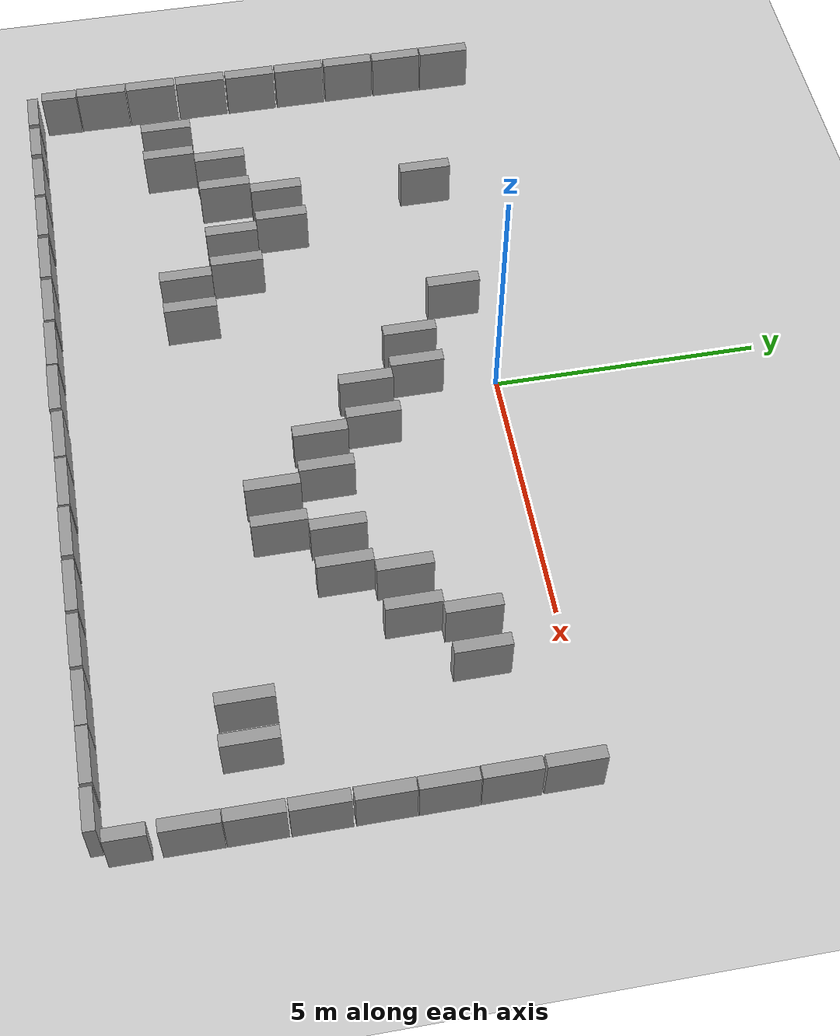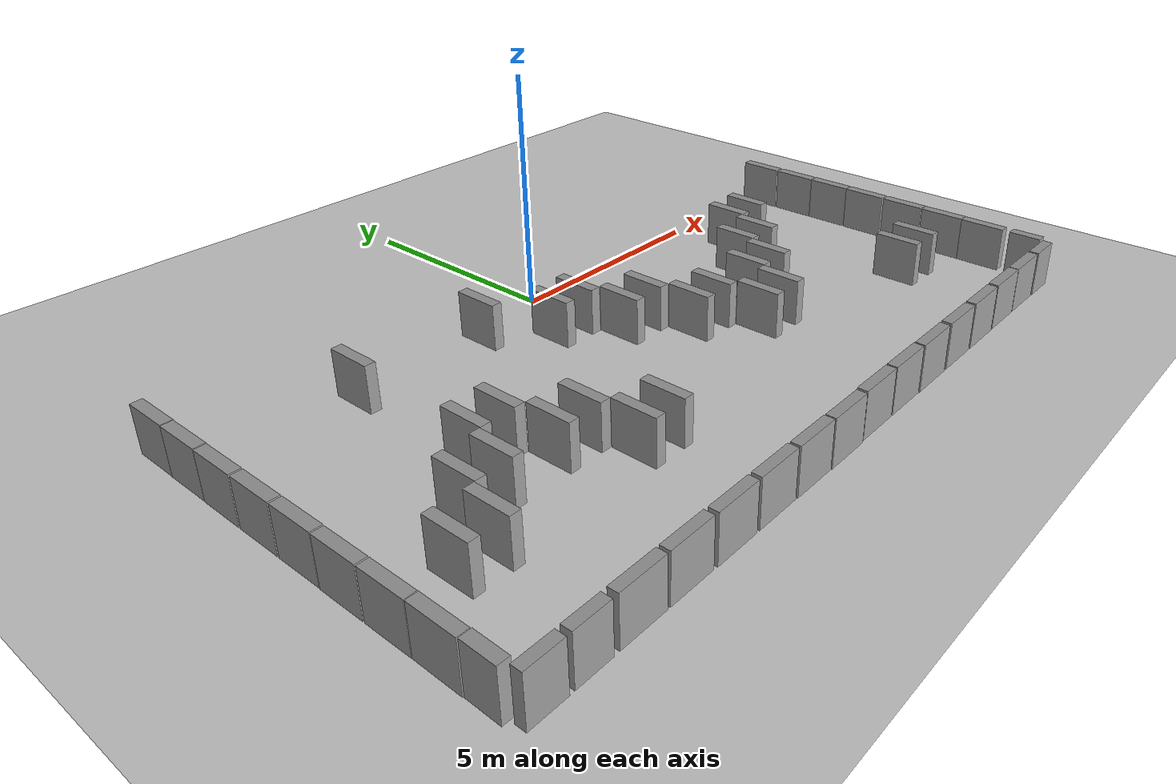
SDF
<sdf version="1.6">
 <world name="default">
  <model name="ground_plane">
   <static>1</static>
   <static>1</static>
   <link name="link">
    <collision name="collision">
     <geometry><plane><normal>0 0 1</normal><size>100 100</size></plane></geometry>
     <surface><friction><ode><mu>100</mu><mu2>50</mu2></ode></friction></surface>
    </collision>
    <visual name="visual">
     <cast_shadows>0</cast_shadows>
     <geometry><plane><normal>0 0 1</normal><size>100 100</size></plane></geometry>
     <material>
      <script><uri>file://media/materials/scripts/gazebo.material</uri><name>Gazebo/Grey</name></script>
     </material>
    </visual>
   </link>
  </model>
  <model name="unit_box_0_clone_7">
   <pose>8.11276 -0.44932 0.5 0 -0 0.000299</pose>
   <link name="link">
    <inertial>
     <mass>1</mass>
     <inertia>
      <ixx>0.166667</ixx>
      <ixy>0</ixy>
      <ixz>0</ixz>
      <iyy>0.166667</iyy>
      <iyz>0</iyz>
      <izz>0.166667</izz>
     </inertia>
    </inertial>
    <collision name="collision"><geometry><box><size>0.230819 1 1</size></box></geometry></collision>
    <visual name="visual">
     <geometry><box><size>0.230819 1 1</size></box></geometry>
     <material>
      <script><name>Gazebo/Grey</name><uri>file://media/materials/scripts/gazebo.material</uri></script>
     </material>
    </visual>
   </link>
  </model>
  <model name="unit_box_0_clone_8">
   <pose>8.11912 -1.48629 0.5 0 -0 0.000299</pose>
   <link name="link">
    <inertial>
     <mass>1</mass>
     <inertia>
      <ixx>0.166667</ixx>
      <ixy>0</ixy>
      <ixz>0</ixz>
      <iyy>0.166667</iyy>
      <iyz>0</iyz>
      <izz>0.166667</izz>
     </inertia>
    </inertial>
    <collision name="collision"><geometry><box><size>0.230819 1 1</size></box></geometry></collision>
    <visual name="visual">
     <geometry><box><size>0.230819 1 1</size></box></geometry>
     <material>
      <script><name>Gazebo/Grey</name><uri>file://media/materials/scripts/gazebo.material</uri></script>
     </material>
    </visual>
   </link>
  </model>
  <model name="unit_box_0_clone_9">
   <pose>8.12548 -2.5042 0.5 0 -0 0.000299</pose>
   <link name="link">
    <inertial>
     <mass>1</mass>
     <inertia>
      <ixx>0.166667</ixx>
      <ixy>0</ixy>
      <ixz>0</ixz>
      <iyy>0.166667</iyy>
      <iyz>0</iyz>
      <izz>0.166667</izz>
     </inertia>
    </inertial>
    <collision name="collision"><geometry><box><size>0.230819 1 1</size></box></geometry></collision>
    <visual name="visual">
     <geometry><box><size>0.230819 1 1</size></box></geometry>
     <material>
      <script><name>Gazebo/Grey</name><uri>file://media/materials/scripts/gazebo.material</uri></script>
     </material>
    </visual>
   </link>
  </model>
  <model name="unit_box_0_clone_10">
   <pose>8.12331 -3.52223 0.5 0 -0 0.000299</pose>
   <link name="link">
    <inertial>
     <mass>1</mass>
     <inertia>
      <ixx>0.166667</ixx>
      <ixy>0</ixy>
      <ixz>0</ixz>
      <iyy>0.166667</iyy>
      <iyz>0</iyz>
      <izz>0.166667</izz>
     </inertia>
    </inertial>
    <collision name="collision"><geometry><box><size>0.230819 1 1</size></box></geometry></collision>
    <visual name="visual">
     <geometry><box><size>0.230819 1 1</size></box></geometry>
     <material>
      <script><name>Gazebo/Grey</name><uri>file://media/materials/scripts/gazebo.material</uri></script>
     </material>
    </visual>
   </link>
  </model>
  <model name="unit_box_0_clone_11">
   <pose>8.1233 -4.56316 0.5 0 -0 0.000299</pose>
   <link name="link">
    <inertial>
     <mass>1</mass>
     <inertia>
      <ixx>0.166667</ixx>
      <ixy>0</ixy>
      <ixz>0</ixz>
      <iyy>0.166667</iyy>
      <iyz>0</iyz>
      <izz>0.166667</izz>
     </inertia>
    </inertial>
    <collision name="collision"><geometry><box><size>0.230819 1 1</size></box></geometry></collision>
    <visual name="visual">
     <geometry><box><size>0.230819 1 1</size></box></geometry>
     <material>
      <script><name>Gazebo/Grey</name><uri>file://media/materials/scripts/gazebo.material</uri></script>
     </material>
    </visual>
   </link>
  </model>
  <model name="unit_box_0_clone_12">
   <pose>8.11815 -5.59377 0.5 0 -0 0.000299</pose>
   <link name="link">
    <inertial>
     <mass>1</mass>
     <inertia>
      <ixx>0.166667</ixx>
      <ixy>0</ixy>
      <ixz>0</ixz>
      <iyy>0.166667</iyy>
      <iyz>0</iyz>
      <izz>0.166667</izz>
     </inertia>
    </inertial>
    <collision name="collision"><geometry><box><size>0.230819 1 1</size></box></geometry></collision>
    <visual name="visual">
     <geometry><box><size>0.230819 1 1</size></box></geometry>
     <material>
      <script><name>Gazebo/Grey</name><uri>file://media/materials/scripts/gazebo.material</uri></script>
     </material>
    </visual>
   </link>
  </model>
  <model name="unit_box_0_clone_13">
   <pose>8.11333 -6.60776 0.5 -0 -0 -0.005308</pose>
   <link name="link">
    <inertial>
     <mass>1</mass>
     <inertia>
      <ixx>0.166667</ixx>
      <ixy>0</ixy>
      <ixz>0</ixz>
      <iyy>0.166667</iyy>
      <iyz>0</iyz>
      <izz>0.166667</izz>
     </inertia>
    </inertial>
    <collision name="collision"><geometry><box><size>0.230819 1 1</size></box></geometry></collision>
    <visual name="visual">
     <geometry><box><size>0.230819 1 1</size></box></geometry>
     <material>
      <script><name>Gazebo/Grey</name><uri>file://media/materials/scripts/gazebo.material</uri></script>
     </material>
    </visual>
   </link>
  </model>
  <model name="unit_box_clone_15_clone_0">
   <pose>6.71207 -8.13115 0.5 0 -0 0.00017</pose>
   <link name="link">
    <inertial>
     <mass>1</mass>
     <inertia>
      <ixx>0.166667</ixx>
      <ixy>0</ixy>
      <ixz>0</ixz>
      <iyy>0.166667</iyy>
      <iyz>0</iyz>
      <izz>0.166667</izz>
     </inertia>
    </inertial>
    <collision name="collision"><geometry><box><size>1 0.210541 1</size></box></geometry></collision>
    <visual name="visual">
     <geometry><box><size>1 0.210541 1</size></box></geometry>
     <material>
      <script><name>Gazebo/Grey</name><uri>file://media/materials/scripts/gazebo.material</uri></script>
     </material>
    </visual>
   </link>
  </model>
  <model name="unit_box_clone_15_clone_1">
   <pose>5.69715 -8.13115 0.5 0 -0 0.00017</pose>
   <link name="link">
    <inertial>
     <mass>1</mass>
     <inertia>
      <ixx>0.166667</ixx>
      <ixy>0</ixy>
      <ixz>0</ixz>
      <iyy>0.166667</iyy>
      <iyz>0</iyz>
      <izz>0.166667</izz>
     </inertia>
    </inertial>
    <collision name="collision"><geometry><box><size>1 0.210541 1</size></box></geometry></collision>
    <visual name="visual">
     <geometry><box><size>1 0.210541 1</size></box></geometry>
     <material>
      <script><name>Gazebo/Grey</name><uri>file://media/materials/scripts/gazebo.material</uri></script>
     </material>
    </visual>
   </link>
  </model>
  <model name="unit_box_clone_15_clone_2">
   <pose>4.63881 -8.13733 0.5 0 -0 0.00017</pose>
   <link name="link">
    <inertial>
     <mass>1</mass>
     <inertia>
      <ixx>0.166667</ixx>
      <ixy>0</ixy>
      <ixz>0</ixz>
      <iyy>0.166667</iyy>
      <iyz>0</iyz>
      <izz>0.166667</izz>
     </inertia>
    </inertial>
    <collision name="collision"><geometry><box><size>1 0.210541 1</size></box></geometry></collision>
    <visual name="visual">
     <geometry><box><size>1 0.210541 1</size></box></geometry>
     <material>
      <script><name>Gazebo/Grey</name><uri>file://media/materials/scripts/gazebo.material</uri></script>
     </material>
    </visual>
   </link>
  </model>
  <model name="unit_box_clone_15_clone_3">
   <pose>3.57975 -8.13733 0.5 0 -0 0.00017</pose>
   <link name="link">
    <inertial>
     <mass>1</mass>
     <inertia>
      <ixx>0.166667</ixx>
      <ixy>0</ixy>
      <ixz>0</ixz>
      <iyy>0.166667</iyy>
      <iyz>0</iyz>
      <izz>0.166667</izz>
     </inertia>
    </inertial>
    <collision name="collision"><geometry><box><size>1 0.210541 1</size></box></geometry></collision>
    <visual name="visual">
     <geometry><box><size>1 0.210541 1</size></box></geometry>
     <material>
      <script><name>Gazebo/Grey</name><uri>file://media/materials/scripts/gazebo.material</uri></script>
     </material>
    </visual>
   </link>
  </model>
  <model name="unit_box_clone_15_clone_4">
   <pose>2.49815 -8.13731 0.5 0 -0 0.00017</pose>
   <link name="link">
    <inertial>
     <mass>1</mass>
     <inertia>
      <ixx>0.166667</ixx>
      <ixy>0</ixy>
      <ixz>0</ixz>
      <iyy>0.166667</iyy>
      <iyz>0</iyz>
      <izz>0.166667</izz>
     </inertia>
    </inertial>
    <collision name="collision"><geometry><box><size>1 0.210541 1</size></box></geometry></collision>
    <visual name="visual">
     <geometry><box><size>1 0.210541 1</size></box></geometry>
     <material>
      <script><name>Gazebo/Grey</name><uri>file://media/materials/scripts/gazebo.material</uri></script>
     </material>
    </visual>
   </link>
  </model>
  <model name="unit_box_clone_15_clone_5">
   <pose>1.46162 -8.12604 0.5 0 -0 0.00017</pose>
   <link name="link">
    <inertial>
     <mass>1</mass>
     <inertia>
      <ixx>0.166667</ixx>
      <ixy>0</ixy>
      <ixz>0</ixz>
      <iyy>0.166667</iyy>
      <iyz>0</iyz>
      <izz>0.166667</izz>
     </inertia>
    </inertial>
    <collision name="collision"><geometry><box><size>1 0.210541 1</size></box></geometry></collision>
    <visual name="visual">
     <geometry><box><size>1 0.210541 1</size></box></geometry>
     <material>
      <script><name>Gazebo/Grey</name><uri>file://media/materials/scripts/gazebo.material</uri></script>
     </material>
    </visual>
   </link>
  </model>
  <model name="unit_box_clone_15_clone_6">
   <pose>0.425089 -8.12603 0.5 0 -0 0.00017</pose>
   <link name="link">
    <inertial>
     <mass>1</mass>
     <inertia>
      <ixx>0.166667</ixx>
      <ixy>0</ixy>
      <ixz>0</ixz>
      <iyy>0.166667</iyy>
      <iyz>0</iyz>
      <izz>0.166667</izz>
     </inertia>
    </inertial>
    <collision name="collision"><geometry><box><size>1 0.210541 1</size></box></geometry></collision>
    <visual name="visual">
     <geometry><box><size>1 0.210541 1</size></box></geometry>
     <material>
      <script><name>Gazebo/Grey</name><uri>file://media/materials/scripts/gazebo.material</uri></script>
     </material>
    </visual>
   </link>
  </model>
  <model name="unit_box_clone_15_clone_7">
   <pose>-0.633973 -8.14859 0.5 0 -0 0.00017</pose>
   <link name="link">
    <inertial>
     <mass>1</mass>
     <inertia>
      <ixx>0.166667</ixx>
      <ixy>0</ixy>
      <ixz>0</ixz>
      <iyy>0.166667</iyy>
      <iyz>0</iyz>
      <izz>0.166667</izz>
     </inertia>
    </inertial>
    <collision name="collision"><geometry><box><size>1 0.210541 1</size></box></geometry></collision>
    <visual name="visual">
     <geometry><box><size>1 0.210541 1</size></box></geometry>
     <material>
      <script><name>Gazebo/Grey</name><uri>file://media/materials/scripts/gazebo.material</uri></script>
     </material>
    </visual>
   </link>
  </model>
  <model name="unit_box_clone_15_clone_8">
   <pose>-1.65923 -8.1373 0.5 0 -0 0.00017</pose>
   <link name="link">
    <inertial>
     <mass>1</mass>
     <inertia>
      <ixx>0.166667</ixx>
      <ixy>0</ixy>
      <ixz>0</ixz>
      <iyy>0.166667</iyy>
      <iyz>0</iyz>
      <izz>0.166667</izz>
     </inertia>
    </inertial>
    <collision name="collision"><geometry><box><size>1 0.210541 1</size></box></geometry></collision>
    <visual name="visual">
     <geometry><box><size>1 0.210541 1</size></box></geometry>
     <material>
      <script><name>Gazebo/Grey</name><uri>file://media/materials/scripts/gazebo.material</uri></script>
     </material>
    </visual>
   </link>
  </model>
  <model name="unit_box_clone_15_clone_9">
   <pose>-2.70703 -8.12605 0.5 0 -0 0.00017</pose>
   <link name="link">
    <inertial>
     <mass>1</mass>
     <inertia>
      <ixx>0.166667</ixx>
      <ixy>0</ixy>
      <ixz>0</ixz>
      <iyy>0.166667</iyy>
      <iyz>0</iyz>
      <izz>0.166667</izz>
     </inertia>
    </inertial>
    <collision name="collision"><geometry><box><size>1 0.210541 1</size></box></geometry></collision>
    <visual name="visual">
     <geometry><box><size>1 0.210541 1</size></box></geometry>
     <material>
      <script><name>Gazebo/Grey</name><uri>file://media/materials/scripts/gazebo.material</uri></script>
     </material>
    </visual>
   </link>
  </model>
  <model name="unit_box_clone_15_clone_10">
   <pose>-3.77736 -8.12604 0.5 0 -0 0.00017</pose>
   <link name="link">
    <inertial>
     <mass>1</mass>
     <inertia>
      <ixx>0.166667</ixx>
      <ixy>0</ixy>
      <ixz>0</ixz>
      <iyy>0.166667</iyy>
      <iyz>0</iyz>
      <izz>0.166667</izz>
     </inertia>
    </inertial>
    <collision name="collision"><geometry><box><size>1 0.210541 1</size></box></geometry></collision>
    <visual name="visual">
     <geometry><box><size>1 0.210541 1</size></box></geometry>
     <material>
      <script><name>Gazebo/Grey</name><uri>file://media/materials/scripts/gazebo.material</uri></script>
     </material>
    </visual>
   </link>
  </model>
  <model name="unit_box_clone_15_clone_11">
   <pose>-4.85896 -8.11478 0.5 0 -0 0.00017</pose>
   <link name="link">
    <inertial>
     <mass>1</mass>
     <inertia>
      <ixx>0.166667</ixx>
      <ixy>0</ixy>
      <ixz>0</ixz>
      <iyy>0.166667</iyy>
      <iyz>0</iyz>
      <izz>0.166667</izz>
     </inertia>
    </inertial>
    <collision name="collision"><geometry><box><size>1 0.210541 1</size></box></geometry></collision>
    <visual name="visual">
     <geometry><box><size>1 0.210541 1</size></box></geometry>
     <material>
      <script><name>Gazebo/Grey</name><uri>file://media/materials/scripts/gazebo.material</uri></script>
     </material>
    </visual>
   </link>
  </model>
  <model name="unit_box_clone_15_clone_12">
   <pose>-5.91802 -8.11477 0.5 0 -0 0.00017</pose>
   <link name="link">
    <inertial>
     <mass>1</mass>
     <inertia>
      <ixx>0.166667</ixx>
      <ixy>0</ixy>
      <ixz>0</ixz>
      <iyy>0.166667</iyy>
      <iyz>0</iyz>
      <izz>0.166667</izz>
     </inertia>
    </inertial>
    <collision name="collision"><geometry><box><size>1 0.210541 1</size></box></geometry></collision>
    <visual name="visual">
     <geometry><box><size>1 0.210541 1</size></box></geometry>
     <material>
      <script><name>Gazebo/Grey</name><uri>file://media/materials/scripts/gazebo.material</uri></script>
     </material>
    </visual>
   </link>
  </model>
  <model name="unit_box_0_clone_4_clone_6">
   <pose>-8.11933 0.50163 0.5 0 -0 0.000299</pose>
   <link name="link">
    <inertial>
     <mass>1</mass>
     <inertia>
      <ixx>0.166667</ixx>
      <ixy>0</ixy>
      <ixz>0</ixz>
      <iyy>0.166667</iyy>
      <iyz>0</iyz>
      <izz>0.166667</izz>
     </inertia>
    </inertial>
    <collision name="collision"><geometry><box><size>0.230819 1 1</size></box></geometry></collision>
    <visual name="visual">
     <geometry><box><size>0.230819 1 1</size></box></geometry>
     <material>
      <script><name>Gazebo/Grey</name><uri>file://media/materials/scripts/gazebo.material</uri></script>
     </material>
    </visual>
   </link>
  </model>
  <model name="unit_box_0_clone_4_clone_7">
   <pose>-8.12609 -0.518034 0.5 0 -0 0.000299</pose>
   <link name="link">
    <inertial>
     <mass>1</mass>
     <inertia>
      <ixx>0.166667</ixx>
      <ixy>0</ixy>
      <ixz>0</ixz>
      <iyy>0.166667</iyy>
      <iyz>0</iyz>
      <izz>0.166667</izz>
     </inertia>
    </inertial>
    <collision name="collision"><geometry><box><size>0.230819 1 1</size></box></geometry></collision>
    <visual name="visual">
     <geometry><box><size>0.230819 1 1</size></box></geometry>
     <material>
      <script><name>Gazebo/Grey</name><uri>file://media/materials/scripts/gazebo.material</uri></script>
     </material>
    </visual>
   </link>
  </model>
  <model name="unit_box_0_clone_4_clone_8">
   <pose>-8.13284 -1.54445 0.5 0 -0 0.000299</pose>
   <link name="link">
    <inertial>
     <mass>1</mass>
     <inertia>
      <ixx>0.166667</ixx>
      <ixy>0</ixy>
      <ixz>0</ixz>
      <iyy>0.166667</iyy>
      <iyz>0</iyz>
      <izz>0.166667</izz>
     </inertia>
    </inertial>
    <collision name="collision"><geometry><box><size>0.230819 1 1</size></box></geometry></collision>
    <visual name="visual">
     <geometry><box><size>0.230819 1 1</size></box></geometry>
     <material>
      <script><name>Gazebo/Grey</name><uri>file://media/materials/scripts/gazebo.material</uri></script>
     </material>
    </visual>
   </link>
  </model>
  <model name="unit_box_0_clone_4_clone_9">
   <pose>-8.13285 -2.58439 0.5 0 -0 0.000299</pose>
   <link name="link">
    <inertial>
     <mass>1</mass>
     <inertia>
      <ixx>0.166667</ixx>
      <ixy>0</ixy>
      <ixz>0</ixz>
      <iyy>0.166667</iyy>
      <iyz>0</iyz>
      <izz>0.166667</izz>
     </inertia>
    </inertial>
    <collision name="collision"><geometry><box><size>0.230819 1 1</size></box></geometry></collision>
    <visual name="visual">
     <geometry><box><size>0.230819 1 1</size></box></geometry>
     <material>
      <script><name>Gazebo/Grey</name><uri>file://media/materials/scripts/gazebo.material</uri></script>
     </material>
    </visual>
   </link>
  </model>
  <model name="unit_box_0_clone_4_clone_10">
   <pose>-8.13285 -3.62431 0.5 0 -0 0.000299</pose>
   <link name="link">
    <inertial>
     <mass>1</mass>
     <inertia>
      <ixx>0.166667</ixx>
      <ixy>0</ixy>
      <ixz>0</ixz>
      <iyy>0.166667</iyy>
      <iyz>0</iyz>
      <izz>0.166667</izz>
     </inertia>
    </inertial>
    <collision name="collision"><geometry><box><size>0.230819 1 1</size></box></geometry></collision>
    <visual name="visual">
     <geometry><box><size>0.230819 1 1</size></box></geometry>
     <material>
      <script><name>Gazebo/Grey</name><uri>file://media/materials/scripts/gazebo.material</uri></script>
     </material>
    </visual>
   </link>
  </model>
  <model name="unit_box_0_clone_4_clone_11">
   <pose>-8.1396 -4.65747 0.5 0 -0 0.000299</pose>
   <link name="link">
    <inertial>
     <mass>1</mass>
     <inertia>
      <ixx>0.166667</ixx>
      <ixy>0</ixy>
      <ixz>0</ixz>
      <iyy>0.166667</iyy>
      <iyz>0</iyz>
      <izz>0.166667</izz>
     </inertia>
    </inertial>
    <collision name="collision"><geometry><box><size>0.230819 1 1</size></box></geometry></collision>
    <visual name="visual">
     <geometry><box><size>0.230819 1 1</size></box></geometry>
     <material>
      <script><name>Gazebo/Grey</name><uri>file://media/materials/scripts/gazebo.material</uri></script>
     </material>
    </visual>
   </link>
  </model>
  <model name="unit_box_0_clone_4_clone_12">
   <pose>-8.1396 -5.69064 0.5 0 -0 0.000299</pose>
   <link name="link">
    <inertial>
     <mass>1</mass>
     <inertia>
      <ixx>0.166667</ixx>
      <ixy>0</ixy>
      <ixz>0</ixz>
      <iyy>0.166667</iyy>
      <iyz>0</iyz>
      <izz>0.166667</izz>
     </inertia>
    </inertial>
    <collision name="collision"><geometry><box><size>0.230819 1 1</size></box></geometry></collision>
    <visual name="visual">
     <geometry><box><size>0.230819 1 1</size></box></geometry>
     <material>
      <script><name>Gazebo/Grey</name><uri>file://media/materials/scripts/gazebo.material</uri></script>
     </material>
    </visual>
   </link>
  </model>
  <model name="unit_box_0_clone_4_clone_13">
   <pose>-8.14113 -6.70874 0.5 0 -0 -0.008563</pose>
   <link name="link">
    <inertial>
     <mass>1</mass>
     <inertia>
      <ixx>0.166667</ixx>
      <ixy>0</ixy>
      <ixz>0</ixz>
      <iyy>0.166667</iyy>
      <iyz>0</iyz>
      <izz>0.166667</izz>
     </inertia>
    </inertial>
    <collision name="collision"><geometry><box><size>0.230819 1 1</size></box></geometry></collision>
    <visual name="visual">
     <geometry><box><size>0.230819 1 1</size></box></geometry>
     <material>
      <script><name>Gazebo/Grey</name><uri>file://media/materials/scripts/gazebo.material</uri></script>
     </material>
    </visual>
   </link>
  </model>
  <model name="unit_box_clone_11_clone_1_clone_0">
   <pose>-6.9088 -8.11956 0.500001 0 2e-06 0.001231</pose>
   <link name="link">
    <inertial>
     <mass>1</mass>
     <inertia>
      <ixx>0.166667</ixx>
      <ixy>0</ixy>
      <ixz>0</ixz>
      <iyy>0.166667</iyy>
      <iyz>0</iyz>
      <izz>0.166667</izz>
     </inertia>
    </inertial>
    <collision name="collision"><geometry><box><size>0.750223 0.210541 1</size></box></geometry></collision>
    <visual name="visual">
     <geometry><box><size>0.750223 0.210541 1</size></box></geometry>
     <material>
      <script><name>Gazebo/Grey</name><uri>file://media/materials/scripts/gazebo.material</uri></script>
     </material>
    </visual>
   </link>
  </model>
  <model name="unit_box_0_clone_4_clone_13_clone_clone">
   <pose>-8.13833 -7.5766 0.500001 -1e-06 -2e-06 -0.015808</pose>
   <link name="link">
    <inertial>
     <mass>1</mass>
     <inertia>
      <ixx>0.166667</ixx>
      <ixy>0</ixy>
      <ixz>0</ixz>
      <iyy>0.166667</iyy>
      <iyz>0</iyz>
      <izz>0.166667</izz>
     </inertia>
    </inertial>
    <collision name="collision"><geometry><box><size>0.230819 0.700336 1</size></box></geometry></collision>
    <visual name="visual">
     <geometry><box><size>0.230819 0.700336 1</size></box></geometry>
     <material>
      <script><name>Gazebo/Grey</name><uri>file://media/materials/scripts/gazebo.material</uri></script>
     </material>
    </visual>
   </link>
  </model>
  <model name="unit_box_clone_11_clone_1_clone_0_clone">
   <pose>-7.75474 -8.12202 0.499997 -2e-06 8e-06 -0.004489</pose>
   <link name="link">
    <inertial>
     <mass>1</mass>
     <inertia>
      <ixx>0.166667</ixx>
      <ixy>0</ixy>
      <ixz>0</ixz>
      <iyy>0.166667</iyy>
      <iyz>0</iyz>
      <izz>0.166667</izz>
     </inertia>
    </inertial>
    <collision name="collision"><geometry><box><size>0.750223 0.210541 1</size></box></geometry></collision>
    <visual name="visual">
     <geometry><box><size>0.750223 0.210541 1</size></box></geometry>
     <material>
      <script><name>Gazebo/Grey</name><uri>file://media/materials/scripts/gazebo.material</uri></script>
     </material>
    </visual>
   </link>
  </model>
  <model name="unit_box_clone_11_clone_1_clone_2">
   <pose>7.64249 -8.13928 0.500001 -1e-06 1e-06 0.000234</pose>
   <link name="link">
    <inertial>
     <mass>1</mass>
     <inertia>
      <ixx>0.166667</ixx>
      <ixy>0</ixy>
      <ixz>0</ixz>
      <iyy>0.166667</iyy>
      <iyz>0</iyz>
      <izz>0.166667</izz>
     </inertia>
    </inertial>
    <collision name="collision"><geometry><box><size>0.750223 0.210541 1</size></box></geometry></collision>
    <visual name="visual">
     <geometry><box><size>0.750223 0.210541 1</size></box></geometry>
     <material>
      <script><name>Gazebo/Grey</name><uri>file://media/materials/scripts/gazebo.material</uri></script>
     </material>
    </visual>
   </link>
  </model>
  <model name="unit_box_0_clone_4_clone_13_clone_clone_clone">
   <pose>8.11858 -7.62156 0.500001 2e-06 -0 -0.002134</pose>
   <link name="link">
    <inertial>
     <mass>1</mass>
     <inertia>
      <ixx>0.166667</ixx>
      <ixy>0</ixy>
      <ixz>0</ixz>
      <iyy>0.166667</iyy>
      <iyz>0</iyz>
      <izz>0.166667</izz>
     </inertia>
    </inertial>
    <collision name="collision"><geometry><box><size>0.230819 0.700336 1</size></box></geometry></collision>
    <visual name="visual">
     <geometry><box><size>0.230819 0.700336 1</size></box></geometry>
     <material>
      <script><name>Gazebo/Grey</name><uri>file://media/materials/scripts/gazebo.material</uri></script>
     </material>
    </visual>
   </link>
  </model>
  <model name="unit_box_0_clone_4_clone_1_clone_9">
   <pose>-4.86949 -3.4991 0.5 0 -0 0.00015</pose>
   <link name="link">
    <inertial>
     <mass>1</mass>
     <inertia>
      <ixx>0.166667</ixx>
      <ixy>0</ixy>
      <ixz>0</ixz>
      <iyy>0.166667</iyy>
      <iyz>0</iyz>
      <izz>0.166667</izz>
     </inertia>
    </inertial>
    <collision name="collision"><geometry><box><size>0.230819 1 1</size></box></geometry></collision>
    <visual name="visual">
     <geometry><box><size>0.230819 1 1</size></box></geometry>
     <material>
      <script><name>Gazebo/Grey</name><uri>file://media/materials/scripts/gazebo.material</uri></script>
     </material>
    </visual>
   </link>
  </model>
  <model name="unit_box_0_clone_4_clone_1_clone_10">
   <pose>-4.12226 -3.49419 0.5 0 -0 0.000128</pose>
   <link name="link">
    <inertial>
     <mass>1</mass>
     <inertia>
      <ixx>0.166667</ixx>
      <ixy>0</ixy>
      <ixz>0</ixz>
      <iyy>0.166667</iyy>
      <iyz>0</iyz>
      <izz>0.166667</izz>
     </inertia>
    </inertial>
    <collision name="collision"><geometry><box><size>0.230819 1 1</size></box></geometry></collision>
    <visual name="visual">
     <geometry><box><size>0.230819 1 1</size></box></geometry>
     <material>
      <script><name>Gazebo/Grey</name><uri>file://media/materials/scripts/gazebo.material</uri></script>
     </material>
    </visual>
   </link>
  </model>
  <model name="unit_box_0_clone_4_clone_1_clone_11">
   <pose>-5.88308 -4.50572 0.5 0 -0 0.000243</pose>
   <link name="link">
    <inertial>
     <mass>1</mass>
     <inertia>
      <ixx>0.166667</ixx>
      <ixy>0</ixy>
      <ixz>0</ixz>
      <iyy>0.166667</iyy>
      <iyz>0</iyz>
      <izz>0.166667</izz>
     </inertia>
    </inertial>
    <collision name="collision"><geometry><box><size>0.230819 1 1</size></box></geometry></collision>
    <visual name="visual">
     <geometry><box><size>0.230819 1 1</size></box></geometry>
     <material>
      <script><name>Gazebo/Grey</name><uri>file://media/materials/scripts/gazebo.material</uri></script>
     </material>
    </visual>
   </link>
  </model>
  <model name="unit_box_0_clone_4_clone_1_clone_12">
   <pose>-5.11506 -4.49636 0.5 0 -0 0.000276</pose>
   <link name="link">
    <inertial>
     <mass>1</mass>
     <inertia>
      <ixx>0.166667</ixx>
      <ixy>0</ixy>
      <ixz>0</ixz>
      <iyy>0.166667</iyy>
      <iyz>0</iyz>
      <izz>0.166667</izz>
     </inertia>
    </inertial>
    <collision name="collision"><geometry><box><size>0.230819 1 1</size></box></geometry></collision>
    <visual name="visual">
     <geometry><box><size>0.230819 1 1</size></box></geometry>
     <material>
      <script><name>Gazebo/Grey</name><uri>file://media/materials/scripts/gazebo.material</uri></script>
     </material>
    </visual>
   </link>
  </model>
  <model name="unit_box_0_clone_4_clone_1_clone_13">
   <pose>-6.88524 -5.48915 0.5 0 -0 0.000298</pose>
   <link name="link">
    <inertial>
     <mass>1</mass>
     <inertia>
      <ixx>0.166667</ixx>
      <ixy>0</ixy>
      <ixz>0</ixz>
      <iyy>0.166667</iyy>
      <iyz>0</iyz>
      <izz>0.166667</izz>
     </inertia>
    </inertial>
    <collision name="collision"><geometry><box><size>0.230819 1 1</size></box></geometry></collision>
    <visual name="visual">
     <geometry><box><size>0.230819 1 1</size></box></geometry>
     <material>
      <script><name>Gazebo/Grey</name><uri>file://media/materials/scripts/gazebo.material</uri></script>
     </material>
    </visual>
   </link>
  </model>
  <model name="unit_box_0_clone_4_clone_1_clone_14">
   <pose>-6.1266 -5.50789 0.5 0 -0 0.000183</pose>
   <link name="link">
    <inertial>
     <mass>1</mass>
     <inertia>
      <ixx>0.166667</ixx>
      <ixy>0</ixy>
      <ixz>0</ixz>
      <iyy>0.166667</iyy>
      <iyz>0</iyz>
      <izz>0.166667</izz>
     </inertia>
    </inertial>
    <collision name="collision"><geometry><box><size>0.230819 1 1</size></box></geometry></collision>
    <visual name="visual">
     <geometry><box><size>0.230819 1 1</size></box></geometry>
     <material>
      <script><name>Gazebo/Grey</name><uri>file://media/materials/scripts/gazebo.material</uri></script>
     </material>
    </visual>
   </link>
  </model>
  <model name="unit_box_0_clone_4_clone_1_clone_15">
   <pose>-3.87874 -4.50572 0.5 0 -0 0.00015</pose>
   <link name="link">
    <inertial>
     <mass>1</mass>
     <inertia>
      <ixx>0.166667</ixx>
      <ixy>0</ixy>
      <ixz>0</ixz>
      <iyy>0.166667</iyy>
      <iyz>0</iyz>
      <izz>0.166667</izz>
     </inertia>
    </inertial>
    <collision name="collision"><geometry><box><size>0.230819 1 1</size></box></geometry></collision>
    <visual name="visual">
     <geometry><box><size>0.230819 1 1</size></box></geometry>
     <material>
      <script><name>Gazebo/Grey</name><uri>file://media/materials/scripts/gazebo.material</uri></script>
     </material>
    </visual>
   </link>
  </model>
  <model name="unit_box_0_clone_4_clone_1_clone_16">
   <pose>-3.11073 -4.49636 0.5 0 -0 0.000128</pose>
   <link name="link">
    <inertial>
     <mass>1</mass>
     <inertia>
      <ixx>0.166667</ixx>
      <ixy>0</ixy>
      <ixz>0</ixz>
      <iyy>0.166667</iyy>
      <iyz>0</iyz>
      <izz>0.166667</izz>
     </inertia>
    </inertial>
    <collision name="collision"><geometry><box><size>0.230819 1 1</size></box></geometry></collision>
    <visual name="visual">
     <geometry><box><size>0.230819 1 1</size></box></geometry>
     <material>
      <script><name>Gazebo/Grey</name><uri>file://media/materials/scripts/gazebo.material</uri></script>
     </material>
    </visual>
   </link>
  </model>
  <model name="unit_box_0_clone_4_clone_1_clone_17">
   <pose>-2.87927 -5.5019 0.5 0 -0 0.000243</pose>
   <link name="link">
    <inertial>
     <mass>1</mass>
     <inertia>
      <ixx>0.166667</ixx>
      <ixy>0</ixy>
      <ixz>0</ixz>
      <iyy>0.166667</iyy>
      <iyz>0</iyz>
      <izz>0.166667</izz>
     </inertia>
    </inertial>
    <collision name="collision"><geometry><box><size>0.230819 1 1</size></box></geometry></collision>
    <visual name="visual">
     <geometry><box><size>0.230819 1 1</size></box></geometry>
     <material>
      <script><name>Gazebo/Grey</name><uri>file://media/materials/scripts/gazebo.material</uri></script>
     </material>
    </visual>
   </link>
  </model>
  <model name="unit_box_0_clone_4_clone_1_clone_18">
   <pose>-2.1186 -5.49651 0.5 0 -0 0.000276</pose>
   <link name="link">
    <inertial>
     <mass>1</mass>
     <inertia>
      <ixx>0.166667</ixx>
      <ixy>0</ixy>
      <ixz>0</ixz>
      <iyy>0.166667</iyy>
      <iyz>0</iyz>
      <izz>0.166667</izz>
     </inertia>
    </inertial>
    <collision name="collision"><geometry><box><size>0.230819 1 1</size></box></geometry></collision>
    <visual name="visual">
     <geometry><box><size>0.230819 1 1</size></box></geometry>
     <material>
      <script><name>Gazebo/Grey</name><uri>file://media/materials/scripts/gazebo.material</uri></script>
     </material>
    </visual>
   </link>
  </model>
  <model name="unit_box_0_clone_4_clone_1_clone_4_clone_0">
   <pose>-1.87003 -0.493227 0.5 0 -0 0.000292</pose>
   <link name="link">
    <inertial>
     <mass>1</mass>
     <inertia>
      <ixx>0.166667</ixx>
      <ixy>0</ixy>
      <ixz>0</ixz>
      <iyy>0.166667</iyy>
      <iyz>0</iyz>
      <izz>0.166667</izz>
     </inertia>
    </inertial>
    <collision name="collision"><geometry><box><size>0.230819 1 1</size></box></geometry></collision>
    <visual name="visual">
     <geometry><box><size>0.230819 1 1</size></box></geometry>
     <material>
      <script><name>Gazebo/Grey</name><uri>file://media/materials/scripts/gazebo.material</uri></script>
     </material>
    </visual>
   </link>
  </model>
  <model name="unit_box_0_clone_4_clone_1_clone_4_clone_5">
   <pose>-0.857917 -1.52377 0.5 0 -0 0.000306</pose>
   <link name="link">
    <inertial>
     <mass>1</mass>
     <inertia>
      <ixx>0.166667</ixx>
      <ixy>0</ixy>
      <ixz>0</ixz>
      <iyy>0.166667</iyy>
      <iyz>0</iyz>
      <izz>0.166667</izz>
     </inertia>
    </inertial>
    <collision name="collision"><geometry><box><size>0.230819 1 1</size></box></geometry></collision>
    <visual name="visual">
     <geometry><box><size>0.230819 1 1</size></box></geometry>
     <material>
      <script><name>Gazebo/Grey</name><uri>file://media/materials/scripts/gazebo.material</uri></script>
     </material>
    </visual>
   </link>
  </model>
  <model name="unit_box_0_clone_4_clone_1_clone_4_clone_6">
   <pose>-0.129686 -1.52377 0.5 0 -0 0.000118</pose>
   <link name="link">
    <inertial>
     <mass>1</mass>
     <inertia>
      <ixx>0.166667</ixx>
      <ixy>0</ixy>
      <ixz>0</ixz>
      <iyy>0.166667</iyy>
      <iyz>0</iyz>
      <izz>0.166667</izz>
     </inertia>
    </inertial>
    <collision name="collision"><geometry><box><size>0.230819 1 1</size></box></geometry></collision>
    <visual name="visual">
     <geometry><box><size>0.230819 1 1</size></box></geometry>
     <material>
      <script><name>Gazebo/Grey</name><uri>file://media/materials/scripts/gazebo.material</uri></script>
     </material>
    </visual>
   </link>
  </model>
  <model name="unit_box_0_clone_4_clone_1_clone_4_clone_6_clone">
   <pose>0.122692 -2.51342 0.5 0 -0 0.000245</pose>
   <link name="link">
    <inertial>
     <mass>1</mass>
     <inertia>
      <ixx>0.166667</ixx>
      <ixy>0</ixy>
      <ixz>0</ixz>
      <iyy>0.166667</iyy>
      <iyz>0</iyz>
      <izz>0.166667</izz>
     </inertia>
    </inertial>
    <collision name="collision"><geometry><box><size>0.230819 1 1</size></box></geometry></collision>
    <visual name="visual">
     <geometry><box><size>0.230819 1 1</size></box></geometry>
     <material>
      <script><name>Gazebo/Grey</name><uri>file://media/materials/scripts/gazebo.material</uri></script>
     </material>
    </visual>
   </link>
  </model>
  <model name="unit_box_0_clone_4_clone_1_clone_4_clone_6_clone_0">
   <pose>0.876884 -2.50056 0.5 0 -0 0.00017</pose>
   <link name="link">
    <inertial>
     <mass>1</mass>
     <inertia>
      <ixx>0.166667</ixx>
      <ixy>0</ixy>
      <ixz>0</ixz>
      <iyy>0.166667</iyy>
      <iyz>0</iyz>
      <izz>0.166667</izz>
     </inertia>
    </inertial>
    <collision name="collision"><geometry><box><size>0.230819 1 1</size></box></geometry></collision>
    <visual name="visual">
     <geometry><box><size>0.230819 1 1</size></box></geometry>
     <material>
      <script><name>Gazebo/Grey</name><uri>file://media/materials/scripts/gazebo.material</uri></script>
     </material>
    </visual>
   </link>
  </model>
  <model name="unit_box_0_clone_4_clone_1_clone_4_clone_6_clone_1">
   <pose>1.12293 -3.50856 0.5 0 -0 0.000147</pose>
   <link name="link">
    <inertial>
     <mass>1</mass>
     <inertia>
      <ixx>0.166667</ixx>
      <ixy>0</ixy>
      <ixz>0</ixz>
      <iyy>0.166667</iyy>
      <iyz>0</iyz>
      <izz>0.166667</izz>
     </inertia>
    </inertial>
    <collision name="collision"><geometry><box><size>0.230819 1 1</size></box></geometry></collision>
    <visual name="visual">
     <geometry><box><size>0.230819 1 1</size></box></geometry>
     <material>
      <script><name>Gazebo/Grey</name><uri>file://media/materials/scripts/gazebo.material</uri></script>
     </material>
    </visual>
   </link>
  </model>
  <model name="unit_box_0_clone_4_clone_1_clone_4_clone_6_clone_2">
   <pose>1.87695 -3.50857 0.5 0 -0 0.000149</pose>
   <link name="link">
    <inertial>
     <mass>1</mass>
     <inertia>
      <ixx>0.166667</ixx>
      <ixy>0</ixy>
      <ixz>0</ixz>
      <iyy>0.166667</iyy>
      <iyz>0</iyz>
      <izz>0.166667</izz>
     </inertia>
    </inertial>
    <collision name="collision"><geometry><box><size>0.230819 1 1</size></box></geometry></collision>
    <visual name="visual">
     <geometry><box><size>0.230819 1 1</size></box></geometry>
     <material>
      <script><name>Gazebo/Grey</name><uri>file://media/materials/scripts/gazebo.material</uri></script>
     </material>
    </visual>
   </link>
  </model>
  <model name="unit_box_0_clone_4_clone_1_clone_4_clone_6_clone_3">
   <pose>2.12299 -4.50864 0.5 0 -0 0.000224</pose>
   <link name="link">
    <inertial>
     <mass>1</mass>
     <inertia>
      <ixx>0.166667</ixx>
      <ixy>0</ixy>
      <ixz>0</ixz>
      <iyy>0.166667</iyy>
      <iyz>0</iyz>
      <izz>0.166667</izz>
     </inertia>
    </inertial>
    <collision name="collision"><geometry><box><size>0.230819 1 1</size></box></geometry></collision>
    <visual name="visual">
     <geometry><box><size>0.230819 1 1</size></box></geometry>
     <material>
      <script><name>Gazebo/Grey</name><uri>file://media/materials/scripts/gazebo.material</uri></script>
     </material>
    </visual>
   </link>
  </model>
  <model name="unit_box_0_clone_4_clone_1_clone_4_clone_6_clone_4">
   <pose>2.87701 -4.49277 0.5 0 -0 0.000247</pose>
   <link name="link">
    <inertial>
     <mass>1</mass>
     <inertia>
      <ixx>0.166667</ixx>
      <ixy>0</ixy>
      <ixz>0</ixz>
      <iyy>0.166667</iyy>
      <iyz>0</iyz>
      <izz>0.166667</izz>
     </inertia>
    </inertial>
    <collision name="collision"><geometry><box><size>0.230819 1 1</size></box></geometry></collision>
    <visual name="visual">
     <geometry><box><size>0.230819 1 1</size></box></geometry>
     <material>
      <script><name>Gazebo/Grey</name><uri>file://media/materials/scripts/gazebo.material</uri></script>
     </material>
    </visual>
   </link>
  </model>
  <model name="unit_box_0_clone_4_clone_1_clone_4_clone_6_clone_11">
   <pose>3.12051 -3.49564 0.5 0 -0 0.000237</pose>
   <link name="link">
    <inertial>
     <mass>1</mass>
     <inertia>
      <ixx>0.166667</ixx>
      <ixy>0</ixy>
      <ixz>0</ixz>
      <iyy>0.166667</iyy>
      <iyz>0</iyz>
      <izz>0.166667</izz>
     </inertia>
    </inertial>
    <collision name="collision"><geometry><box><size>0.230819 1 1</size></box></geometry></collision>
    <visual name="visual">
     <geometry><box><size>0.230819 1 1</size></box></geometry>
     <material>
      <script><name>Gazebo/Grey</name><uri>file://media/materials/scripts/gazebo.material</uri></script>
     </material>
    </visual>
   </link>
  </model>
  <model name="unit_box_0_clone_4_clone_1_clone_4_clone_6_clone_12">
   <pose>3.87835 -3.49831 0.5 0 -0 0.000141</pose>
   <link name="link">
    <inertial>
     <mass>1</mass>
     <inertia>
      <ixx>0.166667</ixx>
      <ixy>0</ixy>
      <ixz>0</ixz>
      <iyy>0.166667</iyy>
      <iyz>0</iyz>
      <izz>0.166667</izz>
     </inertia>
    </inertial>
    <collision name="collision"><geometry><box><size>0.230819 1 1</size></box></geometry></collision>
    <visual name="visual">
     <geometry><box><size>0.230819 1 1</size></box></geometry>
     <material>
      <script><name>Gazebo/Grey</name><uri>file://media/materials/scripts/gazebo.material</uri></script>
     </material>
    </visual>
   </link>
  </model>
  <model name="unit_box_0_clone_4_clone_1_clone_4_clone_6_clone_13">
   <pose>4.11667 -2.50028 0.5 0 -0 0.000132</pose>
   <link name="link">
    <inertial>
     <mass>1</mass>
     <inertia>
      <ixx>0.166667</ixx>
      <ixy>0</ixy>
      <ixz>0</ixz>
      <iyy>0.166667</iyy>
      <iyz>0</iyz>
      <izz>0.166667</izz>
     </inertia>
    </inertial>
    <collision name="collision"><geometry><box><size>0.230819 1 1</size></box></geometry></collision>
    <visual name="visual">
     <geometry><box><size>0.230819 1 1</size></box></geometry>
     <material>
      <script><name>Gazebo/Grey</name><uri>file://media/materials/scripts/gazebo.material</uri></script>
     </material>
    </visual>
   </link>
  </model>
  <model name="unit_box_0_clone_4_clone_1_clone_4_clone_6_clone_14">
   <pose>4.88242 -2.48773 0.5 1e-06 -1e-06 0.000151</pose>
   <link name="link">
    <inertial>
     <mass>1</mass>
     <inertia>
      <ixx>0.166667</ixx>
      <ixy>0</ixy>
      <ixz>0</ixz>
      <iyy>0.166667</iyy>
      <iyz>0</iyz>
      <izz>0.166667</izz>
     </inertia>
    </inertial>
    <collision name="collision"><geometry><box><size>0.230819 1 1</size></box></geometry></collision>
    <visual name="visual">
     <geometry><box><size>0.230819 1 1</size></box></geometry>
     <material>
      <script><name>Gazebo/Grey</name><uri>file://media/materials/scripts/gazebo.material</uri></script>
     </material>
    </visual>
   </link>
  </model>
  <model name="unit_box_0_clone_4_clone_1_clone_4_clone_6_clone_15">
   <pose>5.12093 -1.5044 0.5 0 -0 0.00018</pose>
   <link name="link">
    <inertial>
     <mass>1</mass>
     <inertia>
      <ixx>0.166667</ixx>
      <ixy>0</ixy>
      <ixz>0</ixz>
      <iyy>0.166667</iyy>
      <iyz>0</iyz>
      <izz>0.166667</izz>
     </inertia>
    </inertial>
    <collision name="collision"><geometry><box><size>0.230819 1 1</size></box></geometry></collision>
    <visual name="visual">
     <geometry><box><size>0.230819 1 1</size></box></geometry>
     <material>
      <script><name>Gazebo/Grey</name><uri>file://media/materials/scripts/gazebo.material</uri></script>
     </material>
    </visual>
   </link>
  </model>
  <model name="unit_box_0_clone_4_clone_1_clone_4_clone_6_clone_16">
   <pose>5.87831 -1.5044 0.5 -1e-06 -1e-06 0.000113</pose>
   <link name="link">
    <inertial>
     <mass>1</mass>
     <inertia>
      <ixx>0.166667</ixx>
      <ixy>0</ixy>
      <ixz>0</ixz>
      <iyy>0.166667</iyy>
      <iyz>0</iyz>
      <izz>0.166667</izz>
     </inertia>
    </inertial>
    <collision name="collision"><geometry><box><size>0.230819 1 1</size></box></geometry></collision>
    <visual name="visual">
     <geometry><box><size>0.230819 1 1</size></box></geometry>
     <material>
      <script><name>Gazebo/Grey</name><uri>file://media/materials/scripts/gazebo.material</uri></script>
     </material>
    </visual>
   </link>
  </model>
  <model name="unit_box_0_clone_4_clone_1_clone_4_clone_6_clone_25">
   <pose>-4.88192 -0.49084 0.5 -1e-06 1e-06 0.000139</pose>
   <link name="link">
    <inertial>
     <mass>1</mass>
     <inertia>
      <ixx>0.166667</ixx>
      <ixy>0</ixy>
      <ixz>0</ixz>
      <iyy>0.166667</iyy>
      <iyz>0</iyz>
      <izz>0.166667</izz>
     </inertia>
    </inertial>
    <collision name="collision"><geometry><box><size>0.230819 1 1</size></box></geometry></collision>
    <visual name="visual">
     <geometry><box><size>0.230819 1 1</size></box></geometry>
     <material>
      <script><name>Gazebo/Grey</name><uri>file://media/materials/scripts/gazebo.material</uri></script>
     </material>
    </visual>
   </link>
  </model>
  <model name="unit_box_0_clone_4_clone_1_clone_4_clone_6_clone_27">
   <pose>6.86125 -5.50999 0.5 0 -0 8.8e-05</pose>
   <link name="link">
    <inertial>
     <mass>1</mass>
     <inertia>
      <ixx>0.166667</ixx>
      <ixy>0</ixy>
      <ixz>0</ixz>
      <iyy>0.166667</iyy>
      <iyz>0</iyz>
      <izz>0.166667</izz>
     </inertia>
    </inertial>
    <collision name="collision"><geometry><box><size>0.230819 1 1</size></box></geometry></collision>
    <visual name="visual">
     <geometry><box><size>0.230819 1 1</size></box></geometry>
     <material>
      <script><name>Gazebo/Grey</name><uri>file://media/materials/scripts/gazebo.material</uri></script>
     </material>
    </visual>
   </link>
  </model>
  <model name="unit_box_0_clone_4_clone_1_clone_4_clone_6_clone_28">
   <pose>6.12462 -5.49496 0.5 1e-06 1e-06 0.000127</pose>
   <link name="link">
    <inertial>
     <mass>1</mass>
     <inertia>
      <ixx>0.166667</ixx>
      <ixy>0</ixy>
      <ixz>0</ixz>
      <iyy>0.166667</iyy>
      <iyz>0</iyz>
      <izz>0.166667</izz>
     </inertia>
    </inertial>
    <collision name="collision"><geometry><box><size>0.230819 1 1</size></box></geometry></collision>
    <visual name="visual">
     <geometry><box><size>0.230819 1 1</size></box></geometry>
     <material>
      <script><name>Gazebo/Grey</name><uri>file://media/materials/scripts/gazebo.material</uri></script>
     </material>
    </visual>
   </link>
  </model>
 </world>
</sdf>
